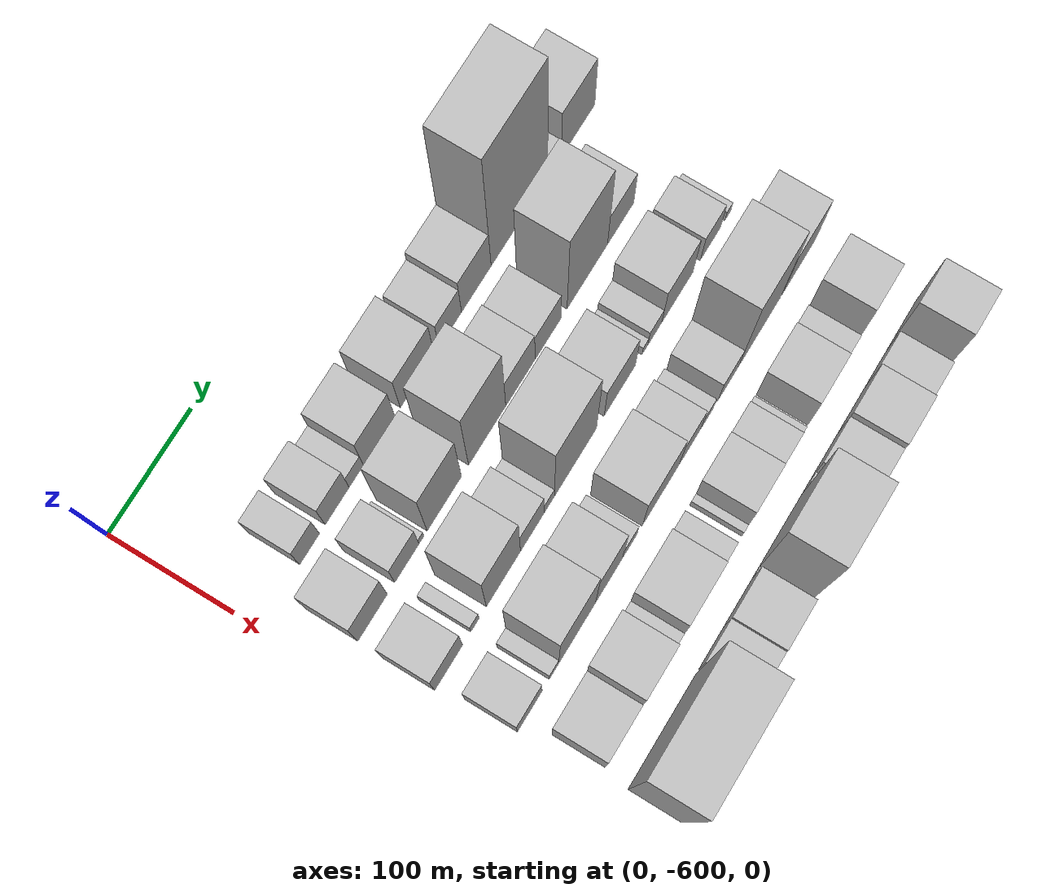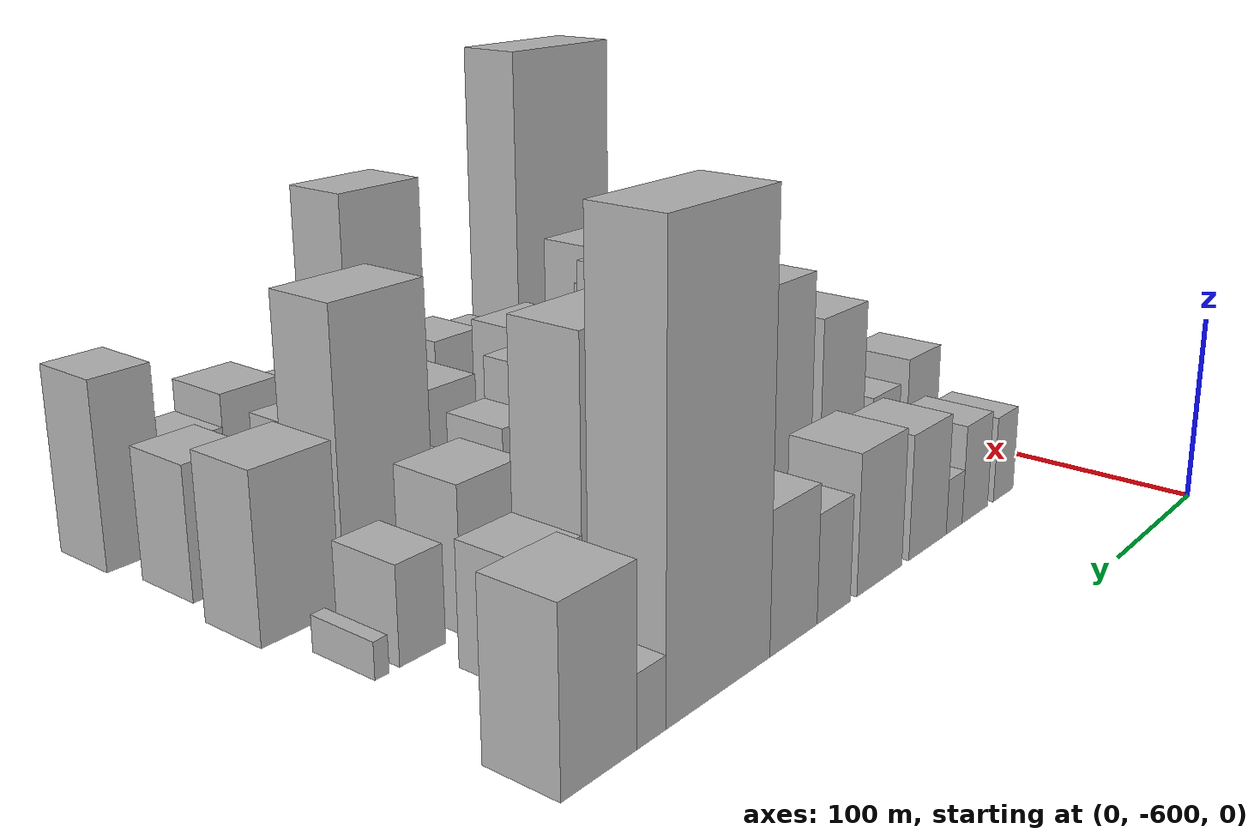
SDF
<sdf version="1.6">
 <world name="default">
  <model name="building_11">
   <static>1</static>
   <pose>100.0000 -538.4592 0 0.000000 0.000000 0.000000</pose>
   <link name="link">
    <pose>0 0 24.00 0 0 0</pose>
    <collision name="collision"><geometry><box><size>40.0000 24.2077 48.0000</size></box></geometry></collision>
    <visual name="visual">
     <cast_shadows>0</cast_shadows>
     <geometry><box><size>40.0000 24.2077 48.0000</size></box></geometry>
     <material>
      <script>
       <uri>model://HANNAS_wall/materials/scripts</uri>
       <uri>model://HANNAS_wall/materials/textures</uri>
       <name>vrc/HANNAS_wall</name>
      </script>
     </material>
    </visual>
   </link>
  </model>
  <model name="building_12">
   <static>1</static>
   <pose>100.0000 -504.6289 0 0.000000 0.000000 0.000000</pose>
   <link name="link">
    <pose>0 0 27.00 0 0 0</pose>
    <collision name="collision"><geometry><box><size>40.0000 29.4530 54.0000</size></box></geometry></collision>
    <visual name="visual">
     <cast_shadows>0</cast_shadows>
     <geometry><box><size>40.0000 29.4530 54.0000</size></box></geometry>
     <material>
      <script>
       <uri>model://HANNAS_wall/materials/scripts</uri>
       <uri>model://HANNAS_wall/materials/textures</uri>
       <name>vrc/HANNAS_wall</name>
      </script>
     </material>
    </visual>
   </link>
  </model>
  <model name="building_13">
   <static>1</static>
   <pose>100.0000 -481.1156 0 0.000000 0.000000 0.000000</pose>
   <link name="link">
    <pose>0 0 15.00 0 0 0</pose>
    <collision name="collision"><geometry><box><size>40.0000 17.5735 30.0000</size></box></geometry></collision>
    <visual name="visual">
     <cast_shadows>0</cast_shadows>
     <geometry><box><size>40.0000 17.5735 30.0000</size></box></geometry>
     <material>
      <script>
       <uri>model://HANNAS_wall/materials/scripts</uri>
       <uri>model://HANNAS_wall/materials/textures</uri>
       <name>vrc/HANNAS_wall</name>
      </script>
     </material>
    </visual>
   </link>
  </model>
  <model name="building_14">
   <static>1</static>
   <pose>100.0000 -452.6875 0 0.000000 0.000000 0.000000</pose>
   <link name="link">
    <pose>0 0 33.00 0 0 0</pose>
    <collision name="collision"><geometry><box><size>40.0000 39.2828 66.0000</size></box></geometry></collision>
    <visual name="visual">
     <cast_shadows>0</cast_shadows>
     <geometry><box><size>40.0000 39.2828 66.0000</size></box></geometry>
     <material>
      <script>
       <uri>model://HANNAS_wall/materials/scripts</uri>
       <uri>model://HANNAS_wall/materials/textures</uri>
       <name>vrc/HANNAS_wall</name>
      </script>
     </material>
    </visual>
   </link>
  </model>
  <model name="building_15">
   <static>1</static>
   <pose>100.0000 -404.6036 0 0.000000 0.000000 0.000000</pose>
   <link name="link">
    <pose>0 0 36.00 0 0 0</pose>
    <collision name="collision"><geometry><box><size>40.0000 42.8849 72.0000</size></box></geometry></collision>
    <visual name="visual">
     <cast_shadows>0</cast_shadows>
     <geometry><box><size>40.0000 42.8849 72.0000</size></box></geometry>
     <material>
      <script>
       <uri>model://HANNAS_wall/materials/scripts</uri>
       <uri>model://HANNAS_wall/materials/textures</uri>
       <name>vrc/HANNAS_wall</name>
      </script>
     </material>
    </visual>
   </link>
  </model>
  <model name="building_16">
   <static>1</static>
   <pose>100.0000 -362.6627 0 0.000000 0.000000 0.000000</pose>
   <link name="link">
    <pose>0 0 27.00 0 0 0</pose>
    <collision name="collision"><geometry><box><size>40.0000 28.9970 54.0000</size></box></geometry></collision>
    <visual name="visual">
     <cast_shadows>0</cast_shadows>
     <geometry><box><size>40.0000 28.9970 54.0000</size></box></geometry>
     <material>
      <script>
       <uri>model://HANNAS_wall/materials/scripts</uri>
       <uri>model://HANNAS_wall/materials/textures</uri>
       <name>vrc/HANNAS_wall</name>
      </script>
     </material>
    </visual>
   </link>
  </model>
  <model name="building_17">
   <static>1</static>
   <pose>100.0000 -329.0223 0 0.000000 0.000000 0.000000</pose>
   <link name="link">
    <pose>0 0 34.50 0 0 0</pose>
    <collision name="collision"><geometry><box><size>40.0000 38.2836 69.0000</size></box></geometry></collision>
    <visual name="visual">
     <cast_shadows>0</cast_shadows>
     <geometry><box><size>40.0000 38.2836 69.0000</size></box></geometry>
     <material>
      <script>
       <uri>model://HANNAS_wall/materials/scripts</uri>
       <uri>model://HANNAS_wall/materials/textures</uri>
       <name>vrc/HANNAS_wall</name>
      </script>
     </material>
    </visual>
   </link>
  </model>
  <model name="building_18">
   <static>1</static>
   <pose>100.0000 -272.8453 0 0.000000 0.000000 0.000000</pose>
   <link name="link">
    <pose>0 0 105.00 0 0 0</pose>
    <collision name="collision"><geometry><box><size>40.0000 74.0705 210.0000</size></box></geometry></collision>
    <visual name="visual">
     <cast_shadows>0</cast_shadows>
     <geometry><box><size>40.0000 74.0705 210.0000</size></box></geometry>
     <material>
      <script>
       <uri>model://HANNAS_wall/materials/scripts</uri>
       <uri>model://HANNAS_wall/materials/textures</uri>
       <name>vrc/HANNAS_wall</name>
      </script>
     </material>
    </visual>
   </link>
  </model>
  <model name="building_19">
   <static>1</static>
   <pose>100.0000 -226.6563 0 0.000000 0.000000 0.000000</pose>
   <link name="link">
    <pose>0 0 16.50 0 0 0</pose>
    <collision name="collision"><geometry><box><size>40.0000 18.3076 33.0000</size></box></geometry></collision>
    <visual name="visual">
     <cast_shadows>0</cast_shadows>
     <geometry><box><size>40.0000 18.3076 33.0000</size></box></geometry>
     <material>
      <script>
       <uri>model://HANNAS_wall/materials/scripts</uri>
       <uri>model://HANNAS_wall/materials/textures</uri>
       <name>vrc/HANNAS_wall</name>
      </script>
     </material>
    </visual>
   </link>
  </model>
  <model name="building_20">
   <static>1</static>
   <pose>100.0000 -195.0285 0 0.000000 0.000000 0.000000</pose>
   <link name="link">
    <pose>0 0 40.50 0 0 0</pose>
    <collision name="collision"><geometry><box><size>40.0000 44.9481 81.0000</size></box></geometry></collision>
    <visual name="visual">
     <cast_shadows>0</cast_shadows>
     <geometry><box><size>40.0000 44.9481 81.0000</size></box></geometry>
     <material>
      <script>
       <uri>model://HANNAS_wall/materials/scripts</uri>
       <uri>model://HANNAS_wall/materials/textures</uri>
       <name>vrc/HANNAS_wall</name>
      </script>
     </material>
    </visual>
   </link>
  </model>
  <model name="building_57">
   <static>1</static>
   <pose>160.0000 -555.0836 0 0.000000 0.000000 0.000000</pose>
   <link name="link">
    <pose>0 0 33.00 0 0 0</pose>
    <collision name="collision"><geometry><box><size>40.0000 36.2835 66.0000</size></box></geometry></collision>
    <visual name="visual">
     <cast_shadows>0</cast_shadows>
     <geometry><box><size>40.0000 36.2835 66.0000</size></box></geometry>
     <material>
      <script>
       <uri>model://HANNAS_wall/materials/scripts</uri>
       <uri>model://HANNAS_wall/materials/textures</uri>
       <name>vrc/HANNAS_wall</name>
      </script>
     </material>
    </visual>
   </link>
  </model>
  <model name="building_58">
   <static>1</static>
   <pose>160.0000 -512.9259 0 0.000000 0.000000 0.000000</pose>
   <link name="link">
    <pose>0 0 27.00 0 0 0</pose>
    <collision name="collision"><geometry><box><size>40.0000 30.0320 54.0000</size></box></geometry></collision>
    <visual name="visual">
     <cast_shadows>0</cast_shadows>
     <geometry><box><size>40.0000 30.0320 54.0000</size></box></geometry>
     <material>
      <script>
       <uri>model://HANNAS_wall/materials/scripts</uri>
       <uri>model://HANNAS_wall/materials/textures</uri>
       <name>vrc/HANNAS_wall</name>
      </script>
     </material>
    </visual>
   </link>
  </model>
  <model name="building_59">
   <static>1</static>
   <pose>160.0000 -494.8144 0 0.000000 0.000000 0.000000</pose>
   <link name="link">
    <pose>0 0 7.50 0 0 0</pose>
    <collision name="collision"><geometry><box><size>40.0000 6.1911 15.0000</size></box></geometry></collision>
    <visual name="visual">
     <cast_shadows>0</cast_shadows>
     <geometry><box><size>40.0000 6.1911 15.0000</size></box></geometry>
     <material>
      <script>
       <uri>model://HANNAS_wall/materials/scripts</uri>
       <uri>model://HANNAS_wall/materials/textures</uri>
       <name>vrc/HANNAS_wall</name>
      </script>
     </material>
    </visual>
   </link>
  </model>
  <model name="building_60">
   <static>1</static>
   <pose>160.0000 -466.1857 0 0.000000 0.000000 0.000000</pose>
   <link name="link">
    <pose>0 0 55.50 0 0 0</pose>
    <collision name="collision"><geometry><box><size>40.0000 43.0663 111.0000</size></box></geometry></collision>
    <visual name="visual">
     <cast_shadows>0</cast_shadows>
     <geometry><box><size>40.0000 43.0663 111.0000</size></box></geometry>
     <material>
      <script>
       <uri>model://HANNAS_wall/materials/scripts</uri>
       <uri>model://HANNAS_wall/materials/textures</uri>
       <name>vrc/HANNAS_wall</name>
      </script>
     </material>
    </visual>
   </link>
  </model>
  <model name="building_61">
   <static>1</static>
   <pose>160.0000 -411.9523 0 0.000000 0.000000 0.000000</pose>
   <link name="link">
    <pose>0 0 69.00 0 0 0</pose>
    <collision name="collision"><geometry><box><size>40.0000 47.4004 138.0000</size></box></geometry></collision>
    <visual name="visual">
     <cast_shadows>0</cast_shadows>
     <geometry><box><size>40.0000 47.4004 138.0000</size></box></geometry>
     <material>
      <script>
       <uri>model://HANNAS_wall/materials/scripts</uri>
       <uri>model://HANNAS_wall/materials/textures</uri>
       <name>vrc/HANNAS_wall</name>
      </script>
     </material>
    </visual>
   </link>
  </model>
  <model name="building_62">
   <static>1</static>
   <pose>160.0000 -369.3961 0 0.000000 0.000000 0.000000</pose>
   <link name="link">
    <pose>0 0 31.50 0 0 0</pose>
    <collision name="collision"><geometry><box><size>40.0000 37.7121 63.0000</size></box></geometry></collision>
    <visual name="visual">
     <cast_shadows>0</cast_shadows>
     <geometry><box><size>40.0000 37.7121 63.0000</size></box></geometry>
     <material>
      <script>
       <uri>model://HANNAS_wall/materials/scripts</uri>
       <uri>model://HANNAS_wall/materials/textures</uri>
       <name>vrc/HANNAS_wall</name>
      </script>
     </material>
    </visual>
   </link>
  </model>
  <model name="building_63">
   <static>1</static>
   <pose>160.0000 -333.7263 0 0.000000 0.000000 0.000000</pose>
   <link name="link">
    <pose>0 0 28.50 0 0 0</pose>
    <collision name="collision"><geometry><box><size>40.0000 33.6275 57.0000</size></box></geometry></collision>
    <visual name="visual">
     <cast_shadows>0</cast_shadows>
     <geometry><box><size>40.0000 33.6275 57.0000</size></box></geometry>
     <material>
      <script>
       <uri>model://HANNAS_wall/materials/scripts</uri>
       <uri>model://HANNAS_wall/materials/textures</uri>
       <name>vrc/HANNAS_wall</name>
      </script>
     </material>
    </visual>
   </link>
  </model>
  <model name="building_64">
   <static>1</static>
   <pose>160.0000 -282.1806 0 0.000000 0.000000 0.000000</pose>
   <link name="link">
    <pose>0 0 75.00 0 0 0</pose>
    <collision name="collision"><geometry><box><size>40.0000 53.4639 150.0000</size></box></geometry></collision>
    <visual name="visual">
     <cast_shadows>0</cast_shadows>
     <geometry><box><size>40.0000 53.4639 150.0000</size></box></geometry>
     <material>
      <script>
       <uri>model://HANNAS_wall/materials/scripts</uri>
       <uri>model://HANNAS_wall/materials/textures</uri>
       <name>vrc/HANNAS_wall</name>
      </script>
     </material>
    </visual>
   </link>
  </model>
  <model name="building_65">
   <static>1</static>
   <pose>160.0000 -237.9200 0 0.000000 0.000000 0.000000</pose>
   <link name="link">
    <pose>0 0 30.00 0 0 0</pose>
    <collision name="collision"><geometry><box><size>40.0000 35.0573 60.0000</size></box></geometry></collision>
    <visual name="visual">
     <cast_shadows>0</cast_shadows>
     <geometry><box><size>40.0000 35.0573 60.0000</size></box></geometry>
     <material>
      <script>
       <uri>model://HANNAS_wall/materials/scripts</uri>
       <uri>model://HANNAS_wall/materials/textures</uri>
       <name>vrc/HANNAS_wall</name>
      </script>
     </material>
    </visual>
   </link>
  </model>
  <model name="building_111">
   <static>1</static>
   <pose>220.0000 -556.8330 0 0.000000 0.000000 0.000000</pose>
   <link name="link">
    <pose>0 0 30.00 0 0 0</pose>
    <collision name="collision"><geometry><box><size>40.0000 34.5257 60.0000</size></box></geometry></collision>
    <visual name="visual">
     <cast_shadows>0</cast_shadows>
     <geometry><box><size>40.0000 34.5257 60.0000</size></box></geometry>
     <material>
      <script>
       <uri>model://HANNAS_wall/materials/scripts</uri>
       <uri>model://HANNAS_wall/materials/textures</uri>
       <name>vrc/HANNAS_wall</name>
      </script>
     </material>
    </visual>
   </link>
  </model>
  <model name="building_112">
   <static>1</static>
   <pose>220.0000 -524.3067 0 0.000000 0.000000 0.000000</pose>
   <link name="link">
    <pose>0 0 12.00 0 0 0</pose>
    <collision name="collision"><geometry><box><size>40.0000 10.5270 24.0000</size></box></geometry></collision>
    <visual name="visual">
     <cast_shadows>0</cast_shadows>
     <geometry><box><size>40.0000 10.5270 24.0000</size></box></geometry>
     <material>
      <script>
       <uri>model://HANNAS_wall/materials/scripts</uri>
       <uri>model://HANNAS_wall/materials/textures</uri>
       <name>vrc/HANNAS_wall</name>
      </script>
     </material>
    </visual>
   </link>
  </model>
  <model name="building_113">
   <static>1</static>
   <pose>220.0000 -488.6460 0 0.000000 0.000000 0.000000</pose>
   <link name="link">
    <pose>0 0 55.50 0 0 0</pose>
    <collision name="collision"><geometry><box><size>40.0000 42.7943 111.0000</size></box></geometry></collision>
    <visual name="visual">
     <cast_shadows>0</cast_shadows>
     <geometry><box><size>40.0000 42.7943 111.0000</size></box></geometry>
     <material>
      <script>
       <uri>model://HANNAS_wall/materials/scripts</uri>
       <uri>model://HANNAS_wall/materials/textures</uri>
       <name>vrc/HANNAS_wall</name>
      </script>
     </material>
    </visual>
   </link>
  </model>
  <model name="building_114">
   <static>1</static>
   <pose>220.0000 -452.2804 0 0.000000 0.000000 0.000000</pose>
   <link name="link">
    <pose>0 0 28.50 0 0 0</pose>
    <collision name="collision"><geometry><box><size>40.0000 29.9370 57.0000</size></box></geometry></collision>
    <visual name="visual">
     <cast_shadows>0</cast_shadows>
     <geometry><box><size>40.0000 29.9370 57.0000</size></box></geometry>
     <material>
      <script>
       <uri>model://HANNAS_wall/materials/scripts</uri>
       <uri>model://HANNAS_wall/materials/textures</uri>
       <name>vrc/HANNAS_wall</name>
      </script>
     </material>
    </visual>
   </link>
  </model>
  <model name="building_115">
   <static>1</static>
   <pose>220.0000 -430.7302 0 0.000000 0.000000 0.000000</pose>
   <link name="link">
    <pose>0 0 13.50 0 0 0</pose>
    <collision name="collision"><geometry><box><size>40.0000 13.1634 27.0000</size></box></geometry></collision>
    <visual name="visual">
     <cast_shadows>0</cast_shadows>
     <geometry><box><size>40.0000 13.1634 27.0000</size></box></geometry>
     <material>
      <script>
       <uri>model://HANNAS_wall/materials/scripts</uri>
       <uri>model://HANNAS_wall/materials/textures</uri>
       <name>vrc/HANNAS_wall</name>
      </script>
     </material>
    </visual>
   </link>
  </model>
  <model name="building_116">
   <static>1</static>
   <pose>220.0000 -397.0003 0 0.000000 0.000000 0.000000</pose>
   <link name="link">
    <pose>0 0 70.50 0 0 0</pose>
    <collision name="collision"><geometry><box><size>40.0000 54.2964 141.0000</size></box></geometry></collision>
    <visual name="visual">
     <cast_shadows>0</cast_shadows>
     <geometry><box><size>40.0000 54.2964 141.0000</size></box></geometry>
     <material>
      <script>
       <uri>model://HANNAS_wall/materials/scripts</uri>
       <uri>model://HANNAS_wall/materials/textures</uri>
       <name>vrc/HANNAS_wall</name>
      </script>
     </material>
    </visual>
   </link>
  </model>
  <model name="building_117">
   <static>1</static>
   <pose>220.0000 -339.4129 0 0.000000 0.000000 0.000000</pose>
   <link name="link">
    <pose>0 0 34.50 0 0 0</pose>
    <collision name="collision"><geometry><box><size>40.0000 40.8785 69.0000</size></box></geometry></collision>
    <visual name="visual">
     <cast_shadows>0</cast_shadows>
     <geometry><box><size>40.0000 40.8785 69.0000</size></box></geometry>
     <material>
      <script>
       <uri>model://HANNAS_wall/materials/scripts</uri>
       <uri>model://HANNAS_wall/materials/textures</uri>
       <name>vrc/HANNAS_wall</name>
      </script>
     </material>
    </visual>
   </link>
  </model>
  <model name="building_118">
   <static>1</static>
   <pose>220.0000 -306.2017 0 0.000000 0.000000 0.000000</pose>
   <link name="link">
    <pose>0 0 9.00 0 0 0</pose>
    <collision name="collision"><geometry><box><size>40.0000 7.5439 18.0000</size></box></geometry></collision>
    <visual name="visual">
     <cast_shadows>0</cast_shadows>
     <geometry><box><size>40.0000 7.5439 18.0000</size></box></geometry>
     <material>
      <script>
       <uri>model://HANNAS_wall/materials/scripts</uri>
       <uri>model://HANNAS_wall/materials/textures</uri>
       <name>vrc/HANNAS_wall</name>
      </script>
     </material>
    </visual>
   </link>
  </model>
  <model name="building_119">
   <static>1</static>
   <pose>220.0000 -293.2437 0 0.000000 0.000000 0.000000</pose>
   <link name="link">
    <pose>0 0 16.50 0 0 0</pose>
    <collision name="collision"><geometry><box><size>40.0000 18.3721 33.0000</size></box></geometry></collision>
    <visual name="visual">
     <cast_shadows>0</cast_shadows>
     <geometry><box><size>40.0000 18.3721 33.0000</size></box></geometry>
     <material>
      <script>
       <uri>model://HANNAS_wall/materials/scripts</uri>
       <uri>model://HANNAS_wall/materials/textures</uri>
       <name>vrc/HANNAS_wall</name>
      </script>
     </material>
    </visual>
   </link>
  </model>
  <model name="building_120">
   <static>1</static>
   <pose>220.0000 -263.0654 0 0.000000 0.000000 0.000000</pose>
   <link name="link">
    <pose>0 0 36.00 0 0 0</pose>
    <collision name="collision"><geometry><box><size>40.0000 41.9844 72.0000</size></box></geometry></collision>
    <visual name="visual">
     <cast_shadows>0</cast_shadows>
     <geometry><box><size>40.0000 41.9844 72.0000</size></box></geometry>
     <material>
      <script>
       <uri>model://HANNAS_wall/materials/scripts</uri>
       <uri>model://HANNAS_wall/materials/textures</uri>
       <name>vrc/HANNAS_wall</name>
      </script>
     </material>
    </visual>
   </link>
  </model>
  <model name="building_121">
   <static>1</static>
   <pose>220.0000 -218.3381 0 0.000000 0.000000 0.000000</pose>
   <link name="link">
    <pose>0 0 24.00 0 0 0</pose>
    <collision name="collision"><geometry><box><size>40.0000 27.4703 48.0000</size></box></geometry></collision>
    <visual name="visual">
     <cast_shadows>0</cast_shadows>
     <geometry><box><size>40.0000 27.4703 48.0000</size></box></geometry>
     <material>
      <script>
       <uri>model://HANNAS_wall/materials/scripts</uri>
       <uri>model://HANNAS_wall/materials/textures</uri>
       <name>vrc/HANNAS_wall</name>
      </script>
     </material>
    </visual>
   </link>
  </model>
  <model name="building_122">
   <static>1</static>
   <pose>220.0000 -194.5430 0 0.000000 0.000000 0.000000</pose>
   <link name="link">
    <pose>0 0 9.00 0 0 0</pose>
    <collision name="collision"><geometry><box><size>40.0000 8.1200 18.0000</size></box></geometry></collision>
    <visual name="visual">
     <cast_shadows>0</cast_shadows>
     <geometry><box><size>40.0000 8.1200 18.0000</size></box></geometry>
     <material>
      <script>
       <uri>model://HANNAS_wall/materials/scripts</uri>
       <uri>model://HANNAS_wall/materials/textures</uri>
       <name>vrc/HANNAS_wall</name>
      </script>
     </material>
    </visual>
   </link>
  </model>
  <model name="building_164">
   <static>1</static>
   <pose>280.0000 -553.4924 0 0.000000 0.000000 0.000000</pose>
   <link name="link">
    <pose>0 0 27.00 0 0 0</pose>
    <collision name="collision"><geometry><box><size>40.0000 30.7294 54.0000</size></box></geometry></collision>
    <visual name="visual">
     <cast_shadows>0</cast_shadows>
     <geometry><box><size>40.0000 30.7294 54.0000</size></box></geometry>
     <material>
      <script>
       <uri>model://HANNAS_wall/materials/scripts</uri>
       <uri>model://HANNAS_wall/materials/textures</uri>
       <name>vrc/HANNAS_wall</name>
      </script>
     </material>
    </visual>
   </link>
  </model>
  <model name="building_165">
   <static>1</static>
   <pose>280.0000 -523.2725 0 0.000000 0.000000 0.000000</pose>
   <link name="link">
    <pose>0 0 13.50 0 0 0</pose>
    <collision name="collision"><geometry><box><size>40.0000 11.7104 27.0000</size></box></geometry></collision>
    <visual name="visual">
     <cast_shadows>0</cast_shadows>
     <geometry><box><size>40.0000 11.7104 27.0000</size></box></geometry>
     <material>
      <script>
       <uri>model://HANNAS_wall/materials/scripts</uri>
       <uri>model://HANNAS_wall/materials/textures</uri>
       <name>vrc/HANNAS_wall</name>
      </script>
     </material>
    </visual>
   </link>
  </model>
  <model name="building_166">
   <static>1</static>
   <pose>280.0000 -494.2145 0 0.000000 0.000000 0.000000</pose>
   <link name="link">
    <pose>0 0 63.00 0 0 0</pose>
    <collision name="collision"><geometry><box><size>40.0000 46.4055 126.0000</size></box></geometry></collision>
    <visual name="visual">
     <cast_shadows>0</cast_shadows>
     <geometry><box><size>40.0000 46.4055 126.0000</size></box></geometry>
     <material>
      <script>
       <uri>model://HANNAS_wall/materials/scripts</uri>
       <uri>model://HANNAS_wall/materials/textures</uri>
       <name>vrc/HANNAS_wall</name>
      </script>
     </material>
    </visual>
   </link>
  </model>
  <model name="building_167">
   <static>1</static>
   <pose>280.0000 -453.9353 0 0.000000 0.000000 0.000000</pose>
   <link name="link">
    <pose>0 0 52.50 0 0 0</pose>
    <collision name="collision"><geometry><box><size>40.0000 34.1529 105.0000</size></box></geometry></collision>
    <visual name="visual">
     <cast_shadows>0</cast_shadows>
     <geometry><box><size>40.0000 34.1529 105.0000</size></box></geometry>
     <material>
      <script>
       <uri>model://HANNAS_wall/materials/scripts</uri>
       <uri>model://HANNAS_wall/materials/textures</uri>
       <name>vrc/HANNAS_wall</name>
      </script>
     </material>
    </visual>
   </link>
  </model>
  <model name="building_168">
   <static>1</static>
   <pose>280.0000 -427.2554 0 0.000000 0.000000 0.000000</pose>
   <link name="link">
    <pose>0 0 18.00 0 0 0</pose>
    <collision name="collision"><geometry><box><size>40.0000 19.2068 36.0000</size></box></geometry></collision>
    <visual name="visual">
     <cast_shadows>0</cast_shadows>
     <geometry><box><size>40.0000 19.2068 36.0000</size></box></geometry>
     <material>
      <script>
       <uri>model://HANNAS_wall/materials/scripts</uri>
       <uri>model://HANNAS_wall/materials/textures</uri>
       <name>vrc/HANNAS_wall</name>
      </script>
     </material>
    </visual>
   </link>
  </model>
  <model name="building_169">
   <static>1</static>
   <pose>280.0000 -386.6053 0 0.000000 0.000000 0.000000</pose>
   <link name="link">
    <pose>0 0 40.50 0 0 0</pose>
    <collision name="collision"><geometry><box><size>40.0000 48.0935 81.0000</size></box></geometry></collision>
    <visual name="visual">
     <cast_shadows>0</cast_shadows>
     <geometry><box><size>40.0000 48.0935 81.0000</size></box></geometry>
     <material>
      <script>
       <uri>model://HANNAS_wall/materials/scripts</uri>
       <uri>model://HANNAS_wall/materials/textures</uri>
       <name>vrc/HANNAS_wall</name>
      </script>
     </material>
    </visual>
   </link>
  </model>
  <model name="building_170">
   <static>1</static>
   <pose>280.0000 -348.2232 0 0.000000 0.000000 0.000000</pose>
   <link name="link">
    <pose>0 0 28.50 0 0 0</pose>
    <collision name="collision"><geometry><box><size>40.0000 28.6705 57.0000</size></box></geometry></collision>
    <visual name="visual">
     <cast_shadows>0</cast_shadows>
     <geometry><box><size>40.0000 28.6705 57.0000</size></box></geometry>
     <material>
      <script>
       <uri>model://HANNAS_wall/materials/scripts</uri>
       <uri>model://HANNAS_wall/materials/textures</uri>
       <name>vrc/HANNAS_wall</name>
      </script>
     </material>
    </visual>
   </link>
  </model>
  <model name="building_171">
   <static>1</static>
   <pose>280.0000 -325.6205 0 0.000000 0.000000 0.000000</pose>
   <link name="link">
    <pose>0 0 15.00 0 0 0</pose>
    <collision name="collision"><geometry><box><size>40.0000 16.5350 30.0000</size></box></geometry></collision>
    <visual name="visual">
     <cast_shadows>0</cast_shadows>
     <geometry><box><size>40.0000 16.5350 30.0000</size></box></geometry>
     <material>
      <script>
       <uri>model://HANNAS_wall/materials/scripts</uri>
       <uri>model://HANNAS_wall/materials/textures</uri>
       <name>vrc/HANNAS_wall</name>
      </script>
     </material>
    </visual>
   </link>
  </model>
  <model name="building_172">
   <static>1</static>
   <pose>280.0000 -297.7503 0 0.000000 0.000000 0.000000</pose>
   <link name="link">
    <pose>0 0 24.00 0 0 0</pose>
    <collision name="collision"><geometry><box><size>40.0000 27.2055 48.0000</size></box></geometry></collision>
    <visual name="visual">
     <cast_shadows>0</cast_shadows>
     <geometry><box><size>40.0000 27.2055 48.0000</size></box></geometry>
     <material>
      <script>
       <uri>model://HANNAS_wall/materials/scripts</uri>
       <uri>model://HANNAS_wall/materials/textures</uri>
       <name>vrc/HANNAS_wall</name>
      </script>
     </material>
    </visual>
   </link>
  </model>
  <model name="building_173">
   <static>1</static>
   <pose>280.0000 -255.4072 0 0.000000 0.000000 0.000000</pose>
   <link name="link">
    <pose>0 0 73.50 0 0 0</pose>
    <collision name="collision"><geometry><box><size>40.0000 57.4807 147.0000</size></box></geometry></collision>
    <visual name="visual">
     <cast_shadows>0</cast_shadows>
     <geometry><box><size>40.0000 57.4807 147.0000</size></box></geometry>
     <material>
      <script>
       <uri>model://HANNAS_wall/materials/scripts</uri>
       <uri>model://HANNAS_wall/materials/textures</uri>
       <name>vrc/HANNAS_wall</name>
      </script>
     </material>
    </visual>
   </link>
  </model>
  <model name="building_174">
   <static>1</static>
   <pose>280.0000 -201.0139 0 0.000000 0.000000 0.000000</pose>
   <link name="link">
    <pose>0 0 42.00 0 0 0</pose>
    <collision name="collision"><geometry><box><size>40.0000 45.3059 84.0000</size></box></geometry></collision>
    <visual name="visual">
     <cast_shadows>0</cast_shadows>
     <geometry><box><size>40.0000 45.3059 84.0000</size></box></geometry>
     <material>
      <script>
       <uri>model://HANNAS_wall/materials/scripts</uri>
       <uri>model://HANNAS_wall/materials/textures</uri>
       <name>vrc/HANNAS_wall</name>
      </script>
     </material>
    </visual>
   </link>
  </model>
  <model name="building_223">
   <static>1</static>
   <pose>340.0000 -538.0868 0 0.000000 0.000000 0.000000</pose>
   <link name="link">
    <pose>0 0 37.50 0 0 0</pose>
    <collision name="collision"><geometry><box><size>40.0000 41.2580 75.0000</size></box></geometry></collision>
    <visual name="visual">
     <cast_shadows>0</cast_shadows>
     <geometry><box><size>40.0000 41.2580 75.0000</size></box></geometry>
     <material>
      <script>
       <uri>model://HANNAS_wall/materials/scripts</uri>
       <uri>model://HANNAS_wall/materials/textures</uri>
       <name>vrc/HANNAS_wall</name>
      </script>
     </material>
    </visual>
   </link>
  </model>
  <model name="building_224">
   <static>1</static>
   <pose>340.0000 -497.9665 0 0.000000 0.000000 0.000000</pose>
   <link name="link">
    <pose>0 0 57.00 0 0 0</pose>
    <collision name="collision"><geometry><box><size>40.0000 38.9827 114.0000</size></box></geometry></collision>
    <visual name="visual">
     <cast_shadows>0</cast_shadows>
     <geometry><box><size>40.0000 38.9827 114.0000</size></box></geometry>
     <material>
      <script>
       <uri>model://HANNAS_wall/materials/scripts</uri>
       <uri>model://HANNAS_wall/materials/textures</uri>
       <name>vrc/HANNAS_wall</name>
      </script>
     </material>
    </visual>
   </link>
  </model>
  <model name="building_225">
   <static>1</static>
   <pose>340.0000 -469.9166 0 0.000000 0.000000 0.000000</pose>
   <link name="link">
    <pose>0 0 16.50 0 0 0</pose>
    <collision name="collision"><geometry><box><size>40.0000 17.1171 33.0000</size></box></geometry></collision>
    <visual name="visual">
     <cast_shadows>0</cast_shadows>
     <geometry><box><size>40.0000 17.1171 33.0000</size></box></geometry>
     <material>
      <script>
       <uri>model://HANNAS_wall/materials/scripts</uri>
       <uri>model://HANNAS_wall/materials/textures</uri>
       <name>vrc/HANNAS_wall</name>
      </script>
     </material>
    </visual>
   </link>
  </model>
  <model name="building_226">
   <static>1</static>
   <pose>340.0000 -437.9758 0 0.000000 0.000000 0.000000</pose>
   <link name="link">
    <pose>0 0 39.00 0 0 0</pose>
    <collision name="collision"><geometry><box><size>40.0000 46.7644 78.0000</size></box></geometry></collision>
    <visual name="visual">
     <cast_shadows>0</cast_shadows>
     <geometry><box><size>40.0000 46.7644 78.0000</size></box></geometry>
     <material>
      <script>
       <uri>model://HANNAS_wall/materials/scripts</uri>
       <uri>model://HANNAS_wall/materials/textures</uri>
       <name>vrc/HANNAS_wall</name>
      </script>
     </material>
    </visual>
   </link>
  </model>
  <model name="building_227">
   <static>1</static>
   <pose>340.0000 -400.8392 0 0.000000 0.000000 0.000000</pose>
   <link name="link">
    <pose>0 0 15.00 0 0 0</pose>
    <collision name="collision"><geometry><box><size>40.0000 17.5089 30.0000</size></box></geometry></collision>
    <visual name="visual">
     <cast_shadows>0</cast_shadows>
     <geometry><box><size>40.0000 17.5089 30.0000</size></box></geometry>
     <material>
      <script>
       <uri>model://HANNAS_wall/materials/scripts</uri>
       <uri>model://HANNAS_wall/materials/textures</uri>
       <name>vrc/HANNAS_wall</name>
      </script>
     </material>
    </visual>
   </link>
  </model>
  <model name="building_228">
   <static>1</static>
   <pose>340.0000 -378.9822 0 0.000000 0.000000 0.000000</pose>
   <link name="link">
    <pose>0 0 7.50 0 0 0</pose>
    <collision name="collision"><geometry><box><size>40.0000 6.2053 15.0000</size></box></geometry></collision>
    <visual name="visual">
     <cast_shadows>0</cast_shadows>
     <geometry><box><size>40.0000 6.2053 15.0000</size></box></geometry>
     <material>
      <script>
       <uri>model://HANNAS_wall/materials/scripts</uri>
       <uri>model://HANNAS_wall/materials/textures</uri>
       <name>vrc/HANNAS_wall</name>
      </script>
     </material>
    </visual>
   </link>
  </model>
  <model name="building_229">
   <static>1</static>
   <pose>340.0000 -357.3542 0 0.000000 0.000000 0.000000</pose>
   <link name="link">
    <pose>0 0 31.50 0 0 0</pose>
    <collision name="collision"><geometry><box><size>40.0000 37.0506 63.0000</size></box></geometry></collision>
    <visual name="visual">
     <cast_shadows>0</cast_shadows>
     <geometry><box><size>40.0000 37.0506 63.0000</size></box></geometry>
     <material>
      <script>
       <uri>model://HANNAS_wall/materials/scripts</uri>
       <uri>model://HANNAS_wall/materials/textures</uri>
       <name>vrc/HANNAS_wall</name>
      </script>
     </material>
    </visual>
   </link>
  </model>
  <model name="building_230">
   <static>1</static>
   <pose>340.0000 -325.1515 0 0.000000 0.000000 0.000000</pose>
   <link name="link">
    <pose>0 0 24.00 0 0 0</pose>
    <collision name="collision"><geometry><box><size>40.0000 27.3549 48.0000</size></box></geometry></collision>
    <visual name="visual">
     <cast_shadows>0</cast_shadows>
     <geometry><box><size>40.0000 27.3549 48.0000</size></box></geometry>
     <material>
      <script>
       <uri>model://HANNAS_wall/materials/scripts</uri>
       <uri>model://HANNAS_wall/materials/textures</uri>
       <name>vrc/HANNAS_wall</name>
      </script>
     </material>
    </visual>
   </link>
  </model>
  <model name="building_231">
   <static>1</static>
   <pose>340.0000 -306.1802 0 0.000000 0.000000 0.000000</pose>
   <link name="link">
    <pose>0 0 12.00 0 0 0</pose>
    <collision name="collision"><geometry><box><size>40.0000 10.5877 24.0000</size></box></geometry></collision>
    <visual name="visual">
     <cast_shadows>0</cast_shadows>
     <geometry><box><size>40.0000 10.5877 24.0000</size></box></geometry>
     <material>
      <script>
       <uri>model://HANNAS_wall/materials/scripts</uri>
       <uri>model://HANNAS_wall/materials/textures</uri>
       <name>vrc/HANNAS_wall</name>
      </script>
     </material>
    </visual>
   </link>
  </model>
  <model name="building_232">
   <static>1</static>
   <pose>340.0000 -274.5443 0 0.000000 0.000000 0.000000</pose>
   <link name="link">
    <pose>0 0 33.00 0 0 0</pose>
    <collision name="collision"><geometry><box><size>40.0000 38.6842 66.0000</size></box></geometry></collision>
    <visual name="visual">
     <cast_shadows>0</cast_shadows>
     <geometry><box><size>40.0000 38.6842 66.0000</size></box></geometry>
     <material>
      <script>
       <uri>model://HANNAS_wall/materials/scripts</uri>
       <uri>model://HANNAS_wall/materials/textures</uri>
       <name>vrc/HANNAS_wall</name>
      </script>
     </material>
    </visual>
   </link>
  </model>
  <model name="building_233">
   <static>1</static>
   <pose>340.0000 -243.9522 0 0.000000 0.000000 0.000000</pose>
   <link name="link">
    <pose>0 0 19.50 0 0 0</pose>
    <collision name="collision"><geometry><box><size>40.0000 22.5000 39.0000</size></box></geometry></collision>
    <visual name="visual">
     <cast_shadows>0</cast_shadows>
     <geometry><box><size>40.0000 22.5000 39.0000</size></box></geometry>
     <material>
      <script>
       <uri>model://HANNAS_wall/materials/scripts</uri>
       <uri>model://HANNAS_wall/materials/textures</uri>
       <name>vrc/HANNAS_wall</name>
      </script>
     </material>
    </visual>
   </link>
  </model>
  <model name="building_234">
   <static>1</static>
   <pose>340.0000 -204.5162 0 0.000000 0.000000 0.000000</pose>
   <link name="link">
    <pose>0 0 34.50 0 0 0</pose>
    <collision name="collision"><geometry><box><size>40.0000 36.3721 69.0000</size></box></geometry></collision>
    <visual name="visual">
     <cast_shadows>0</cast_shadows>
     <geometry><box><size>40.0000 36.3721 69.0000</size></box></geometry>
     <material>
      <script>
       <uri>model://HANNAS_wall/materials/scripts</uri>
       <uri>model://HANNAS_wall/materials/textures</uri>
       <name>vrc/HANNAS_wall</name>
      </script>
     </material>
    </visual>
   </link>
  </model>
  <model name="building_280">
   <static>1</static>
   <pose>400.0000 -519.4274 0 0.000000 0.000000 0.000000</pose>
   <link name="link">
    <pose>0 0 112.50 0 0 0</pose>
    <collision name="collision"><geometry><box><size>40.0000 87.0807 225.0000</size></box></geometry></collision>
    <visual name="visual">
     <cast_shadows>0</cast_shadows>
     <geometry><box><size>40.0000 87.0807 225.0000</size></box></geometry>
     <material>
      <script>
       <uri>model://HANNAS_wall/materials/scripts</uri>
       <uri>model://HANNAS_wall/materials/textures</uri>
       <name>vrc/HANNAS_wall</name>
      </script>
     </material>
    </visual>
   </link>
  </model>
  <model name="building_281">
   <static>1</static>
   <pose>400.0000 -456.9013 0 0.000000 0.000000 0.000000</pose>
   <link name="link">
    <pose>0 0 28.50 0 0 0</pose>
    <collision name="collision"><geometry><box><size>40.0000 31.9714 57.0000</size></box></geometry></collision>
    <visual name="visual">
     <cast_shadows>0</cast_shadows>
     <geometry><box><size>40.0000 31.9714 57.0000</size></box></geometry>
     <material>
      <script>
       <uri>model://HANNAS_wall/materials/scripts</uri>
       <uri>model://HANNAS_wall/materials/textures</uri>
       <name>vrc/HANNAS_wall</name>
      </script>
     </material>
    </visual>
   </link>
  </model>
  <model name="building_282">
   <static>1</static>
   <pose>400.0000 -422.2099 0 0.000000 0.000000 0.000000</pose>
   <link name="link">
    <pose>0 0 31.50 0 0 0</pose>
    <collision name="collision"><geometry><box><size>40.0000 37.4113 63.0000</size></box></geometry></collision>
    <visual name="visual">
     <cast_shadows>0</cast_shadows>
     <geometry><box><size>40.0000 37.4113 63.0000</size></box></geometry>
     <material>
      <script>
       <uri>model://HANNAS_wall/materials/scripts</uri>
       <uri>model://HANNAS_wall/materials/textures</uri>
       <name>vrc/HANNAS_wall</name>
      </script>
     </material>
    </visual>
   </link>
  </model>
  <model name="building_283">
   <static>1</static>
   <pose>400.0000 -399.7959 0 0.000000 0.000000 0.000000</pose>
   <link name="link">
    <pose>0 0 7.50 0 0 0</pose>
    <collision name="collision"><geometry><box><size>40.0000 7.4168 15.0000</size></box></geometry></collision>
    <visual name="visual">
     <cast_shadows>0</cast_shadows>
     <geometry><box><size>40.0000 7.4168 15.0000</size></box></geometry>
     <material>
      <script>
       <uri>model://HANNAS_wall/materials/scripts</uri>
       <uri>model://HANNAS_wall/materials/textures</uri>
       <name>vrc/HANNAS_wall</name>
      </script>
     </material>
    </visual>
   </link>
  </model>
  <model name="building_284">
   <static>1</static>
   <pose>400.0000 -366.7740 0 0.000000 0.000000 0.000000</pose>
   <link name="link">
    <pose>0 0 81.00 0 0 0</pose>
    <collision name="collision"><geometry><box><size>40.0000 58.6270 162.0000</size></box></geometry></collision>
    <visual name="visual">
     <cast_shadows>0</cast_shadows>
     <geometry><box><size>40.0000 58.6270 162.0000</size></box></geometry>
     <material>
      <script>
       <uri>model://HANNAS_wall/materials/scripts</uri>
       <uri>model://HANNAS_wall/materials/textures</uri>
       <name>vrc/HANNAS_wall</name>
      </script>
     </material>
    </visual>
   </link>
  </model>
  <model name="building_285">
   <static>1</static>
   <pose>400.0000 -331.2194 0 0.000000 0.000000 0.000000</pose>
   <link name="link">
    <pose>0 0 13.50 0 0 0</pose>
    <collision name="collision"><geometry><box><size>40.0000 12.4820 27.0000</size></box></geometry></collision>
    <visual name="visual">
     <cast_shadows>0</cast_shadows>
     <geometry><box><size>40.0000 12.4820 27.0000</size></box></geometry>
     <material>
      <script>
       <uri>model://HANNAS_wall/materials/scripts</uri>
       <uri>model://HANNAS_wall/materials/textures</uri>
       <name>vrc/HANNAS_wall</name>
      </script>
     </material>
    </visual>
   </link>
  </model>
  <model name="building_286">
   <static>1</static>
   <pose>400.0000 -307.4270 0 0.000000 0.000000 0.000000</pose>
   <link name="link">
    <pose>0 0 30.00 0 0 0</pose>
    <collision name="collision"><geometry><box><size>40.0000 35.1028 60.0000</size></box></geometry></collision>
    <visual name="visual">
     <cast_shadows>0</cast_shadows>
     <geometry><box><size>40.0000 35.1028 60.0000</size></box></geometry>
     <material>
      <script>
       <uri>model://HANNAS_wall/materials/scripts</uri>
       <uri>model://HANNAS_wall/materials/textures</uri>
       <name>vrc/HANNAS_wall</name>
      </script>
     </material>
    </visual>
   </link>
  </model>
  <model name="building_287">
   <static>1</static>
   <pose>400.0000 -271.2428 0 0.000000 0.000000 0.000000</pose>
   <link name="link">
    <pose>0 0 36.00 0 0 0</pose>
    <collision name="collision"><geometry><box><size>40.0000 37.2656 72.0000</size></box></geometry></collision>
    <visual name="visual">
     <cast_shadows>0</cast_shadows>
     <geometry><box><size>40.0000 37.2656 72.0000</size></box></geometry>
     <material>
      <script>
       <uri>model://HANNAS_wall/materials/scripts</uri>
       <uri>model://HANNAS_wall/materials/textures</uri>
       <name>vrc/HANNAS_wall</name>
      </script>
     </material>
    </visual>
   </link>
  </model>
  <model name="building_288">
   <static>1</static>
   <pose>400.0000 -237.2199 0 0.000000 0.000000 0.000000</pose>
   <link name="link">
    <pose>0 0 27.00 0 0 0</pose>
    <collision name="collision"><geometry><box><size>40.0000 30.7803 54.0000</size></box></geometry></collision>
    <visual name="visual">
     <cast_shadows>0</cast_shadows>
     <geometry><box><size>40.0000 30.7803 54.0000</size></box></geometry>
     <material>
      <script>
       <uri>model://HANNAS_wall/materials/scripts</uri>
       <uri>model://HANNAS_wall/materials/textures</uri>
       <name>vrc/HANNAS_wall</name>
      </script>
     </material>
    </visual>
   </link>
  </model>
  <model name="building_289">
   <static>1</static>
   <pose>400.0000 -218.0767 0 0.000000 0.000000 0.000000</pose>
   <link name="link">
    <pose>0 0 9.00 0 0 0</pose>
    <collision name="collision"><geometry><box><size>40.0000 7.5061 18.0000</size></box></geometry></collision>
    <visual name="visual">
     <cast_shadows>0</cast_shadows>
     <geometry><box><size>40.0000 7.5061 18.0000</size></box></geometry>
     <material>
      <script>
       <uri>model://HANNAS_wall/materials/scripts</uri>
       <uri>model://HANNAS_wall/materials/textures</uri>
       <name>vrc/HANNAS_wall</name>
      </script>
     </material>
    </visual>
   </link>
  </model>
  <model name="building_290">
   <static>1</static>
   <pose>400.0000 -197.1563 0 0.000000 0.000000 0.000000</pose>
   <link name="link">
    <pose>0 0 49.50 0 0 0</pose>
    <collision name="collision"><geometry><box><size>40.0000 34.3347 99.0000</size></box></geometry></collision>
    <visual name="visual">
     <cast_shadows>0</cast_shadows>
     <geometry><box><size>40.0000 34.3347 99.0000</size></box></geometry>
     <material>
      <script>
       <uri>model://HANNAS_wall/materials/scripts</uri>
       <uri>model://HANNAS_wall/materials/textures</uri>
       <name>vrc/HANNAS_wall</name>
      </script>
     </material>
    </visual>
   </link>
  </model>
 </world>
</sdf>
